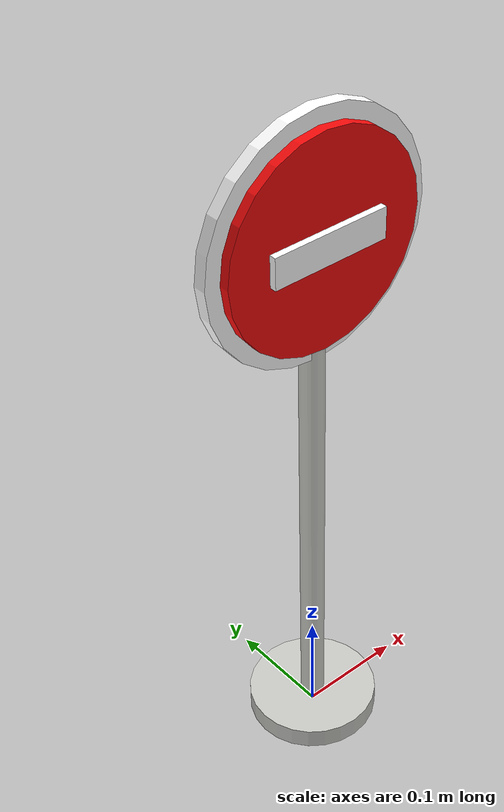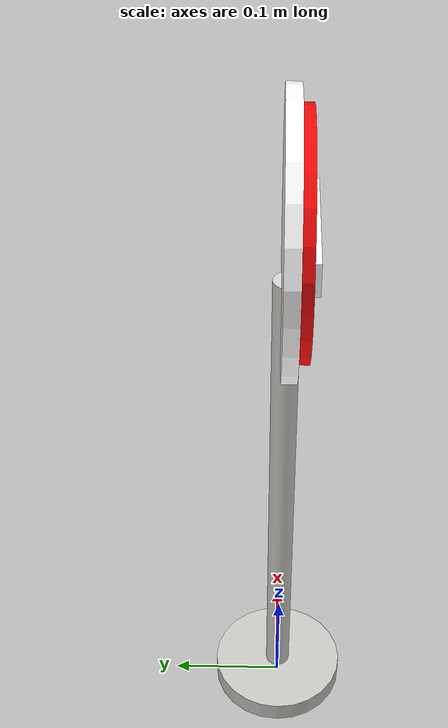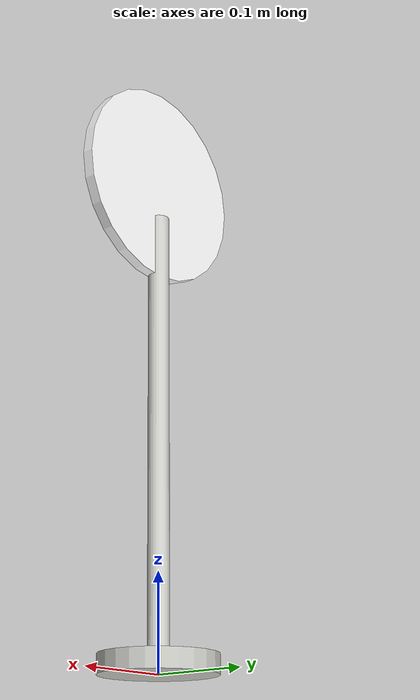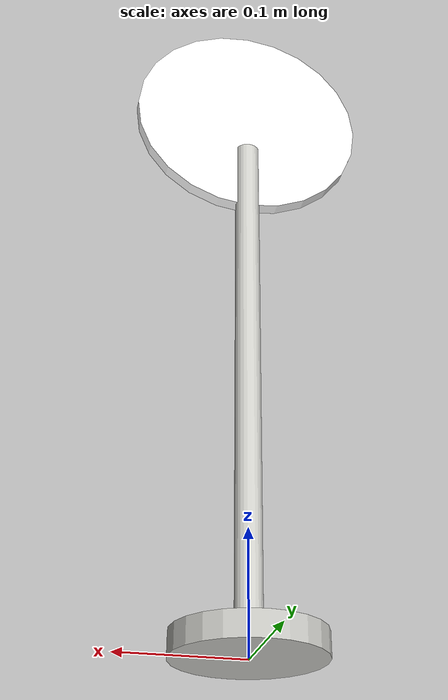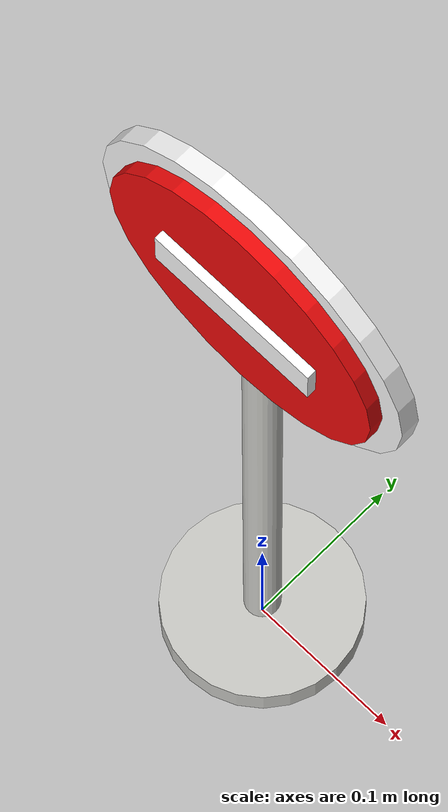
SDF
<?xml version="1.0"?>
<sdf version="1.6">
  <model name="road_sign_stop">
    <static>true</static>
    <link name="stop_sign_link">
      <visual name="base_visual">
        <pose>0 0 0.010 0 0 0</pose>
        <geometry>
          <cylinder>
            <radius>0.060</radius>
            <length>0.020</length>
          </cylinder>
        </geometry>
        <material>
          <ambient>0.72 0.72 0.70 1</ambient>
          <diffuse>0.78 0.78 0.76 1</diffuse>
        </material>
      </visual>
      <visual name="pole_visual">
        <pose>0 0 0.245 0 0 0</pose>
        <geometry>
          <cylinder>
            <radius>0.011</radius>
            <length>0.470</length>
          </cylinder>
        </geometry>
        <material>
          <ambient>0.72 0.72 0.70 1</ambient>
          <diffuse>0.82 0.82 0.80 1</diffuse>
        </material>
      </visual>
      <visual name="white_back_plate_visual">
        <pose>0 -0.002 0.520 1.5708 0 0</pose>
        <geometry>
          <cylinder>
            <radius>0.108</radius>
            <length>0.012</length>
          </cylinder>
        </geometry>
        <material>
          <ambient>1.0 1.0 1.0 1</ambient>
          <diffuse>1.0 1.0 1.0 1</diffuse>
        </material>
      </visual>
      <visual name="red_plate_visual">
        <pose>0 -0.010 0.520 1.5708 0 0</pose>
        <geometry>
          <cylinder>
            <radius>0.094</radius>
            <length>0.014</length>
          </cylinder>
        </geometry>
        <material>
          <ambient>0.72 0.02 0.02 1</ambient>
          <diffuse>0.95 0.04 0.04 1</diffuse>
        </material>
      </visual>
      <visual name="stop_bar_visual">
        <pose>0 -0.020 0.520 0 0 0</pose>
        <geometry>
          <box>
            <size>0.110 0.006 0.028</size>
          </box>
        </geometry>
        <material>
          <ambient>1.0 1.0 1.0 1</ambient>
          <diffuse>1.0 1.0 1.0 1</diffuse>
        </material>
      </visual>
    </link>
  </model>
</sdf>
